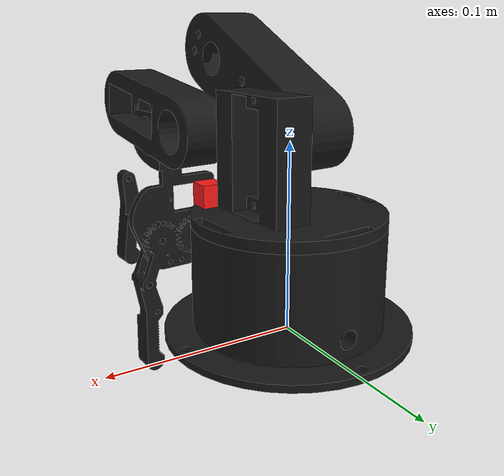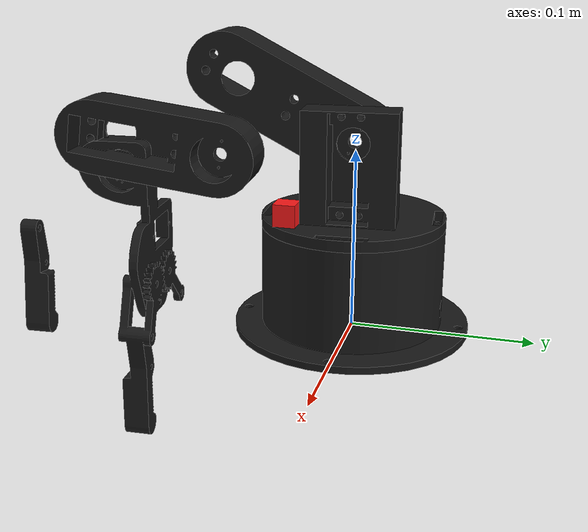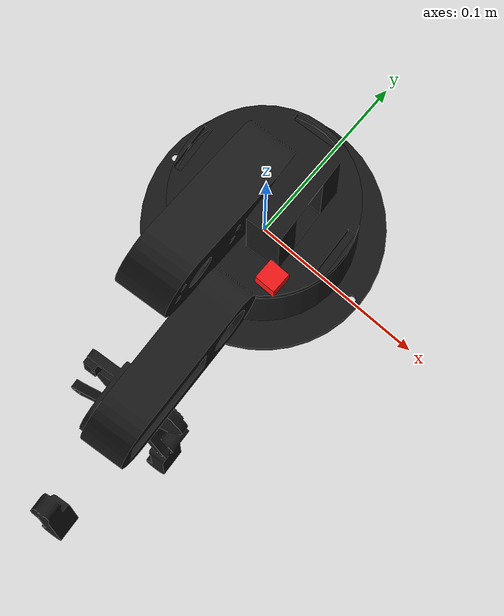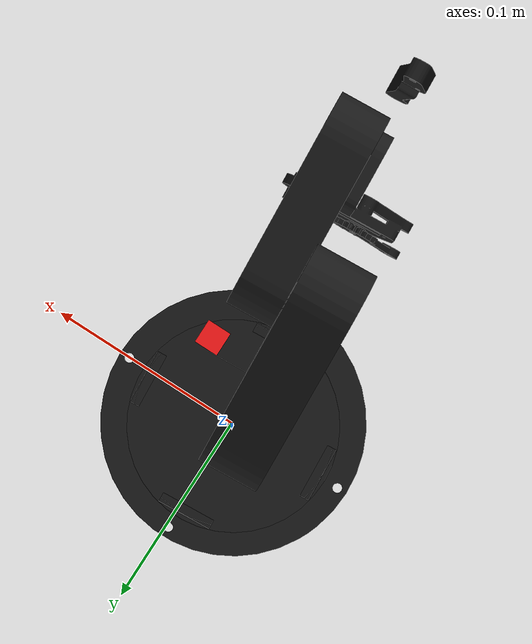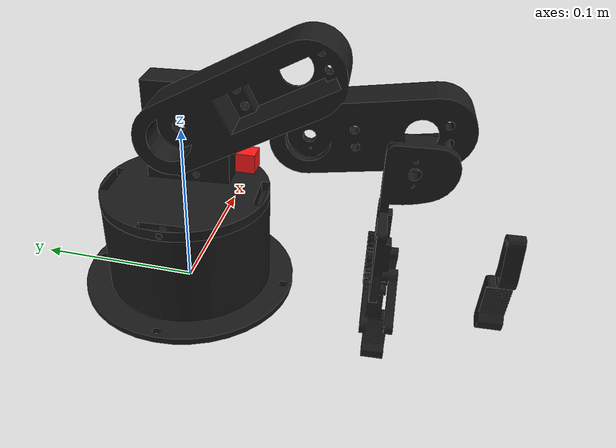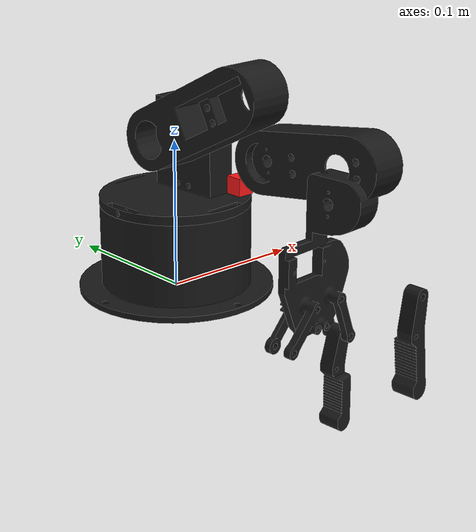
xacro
<?xml version="1.0" encoding="utf-8"?>
<robot
  name="urdf_remade">

 	<link name="world" />

  <joint name="fixed_base" type="fixed">
        <parent link="world" />
        <child link="base_link" />
    </joint>

  <link
    name="base_link">
    <inertial>
      <origin
        xyz="-0.00036123 -0.00042605 0.022628"
        rpy="0 0 0" />
      <mass
        value="0.18873" />
      <inertia
        ixx="0.00025902"
        ixy="0"
        ixz="0"
        iyy="0.00025783"
        iyz="0"
        izz="0.00039006" />
    </inertial>
    <visual>
      <origin
        xyz="0 0 0"
        rpy="0 0 0" />
      <geometry>
        <mesh
          filename="package://manipulator_description/meshes/base_link.STL" />
      </geometry>
      <material
        name="">
        <color
          rgba="0.098039 0.098039 0.098039 1"  />
      </material>
    </visual>
    <collision>
      <origin
        xyz="0 0 0"
        rpy="0 0 0" />
      <geometry>
        <mesh
          filename="package://manipulator_description/meshes/base_link.STL" />
      </geometry>
    </collision>
  </link>

  <link
    name="mancal_link">
    <inertial>
      <origin
        xyz="-0.010397 -0.00033628 0.012328"
        rpy="0 0 0" />
      <mass
        value="0.0822" />
      <inertia
        ixx="7.3019E-05"
        ixy="0"
        ixz="1.106E-05"
        iyy="6.8027E-05"
        iyz="0"
        izz="7.0545E-05" />
    </inertial>
    <visual>
      <origin
        xyz="0 0 0"
        rpy="0 0 0" />
      <geometry>
        <mesh
          filename="package://manipulator_description/meshes/mancal_link.STL" />
      </geometry>
      <material
        name="">
        <color
          rgba="0.098039 0.098039 0.098039 1"  />
      </material>
    </visual>
    <collision>
      <origin
        xyz="0 0 0"
        rpy="0 0 0" />
      <geometry>
        <mesh
          filename="package://manipulator_description/meshes/mancal_link.STL" />
      </geometry>
    </collision>
  </link>
  <joint
    name="joint_base_mancal"
    type="revolute">
    <origin
      xyz="-0.0030392 -0.00072042 0.065"
      rpy="0 0 -3.1273" />
    <parent
      link="base_link" />
    <child
      link="mancal_link" />
    <axis
      xyz="0 0 -1" />
    <limit
      lower="0"
      upper="3.14"
      effort="200"
      velocity="2" />
  </joint>

  <link
    name="camera">
    <visual>
      <geometry>
        <box size= "0.012 0.012 0.012" />
      </geometry>
      <material
        name="">
        <color
          rgba="1.0 0.098039 0.098039 1" />
      </material>
    </visual>
  </link>

  <joint name="fixed_camera" type="fixed">
      <origin
      xyz="0.03 -0.03 0.071"
      rpy="-1.57 0 0" />
      <parent link="base_link" />
      <child link="camera" />
    </joint>

  <link
    name="link_1">
    <inertial>
      <origin
        xyz="-0.007213 -0.0035323 0.035814"
        rpy="0 0 0" />
      <mass
        value="0.088001" />
      <inertia
        ixx="0.00010734"
        ixy="0"
        ixz="0"
        iyy="9.8432E-05"
        iyz="0"
        izz="2.2487E-05" />
    </inertial>
    <visual>
      <origin
        xyz="0 0 0"
        rpy="0 0 0" />
      <geometry>
        <mesh
          filename="package://manipulator_description/meshes/link_1.STL" />
      </geometry>
      <material
        name="">
        <color
          rgba="0.098039 0.098039 0.098039 1"  />
      </material>
    </visual>
    <collision>
      <origin
        xyz="0 0 0"
        rpy="0 0 0" />
      <geometry>
        <mesh
          filename="package://manipulator_description/meshes/link_1.STL" />
      </geometry>
    </collision>
  </link>
  <joint
    name="joint_mancal_link1"
    type="revolute">
    <origin
      xyz="-0.0036813 -0.00011907 0.0398"
      rpy="1.5708 0 3.1416" />
    <parent
      link="mancal_link" />
    <child
      link="link_1" />
    <axis
      xyz="-0.99948 0 0.032327" />
    <limit
      lower="-0.08"
      upper="2.8"
      effort="200"
      velocity="2" />
  </joint>
  <link
    name="link_2">
    <inertial>
      <origin
        xyz="0.0018709 -0.0062333 0.030663"
        rpy="0 0 0" />
      <mass
        value="0.063942" />
      <inertia
        ixx="7.284E-05"
        ixy="0"
        ixz="0"
        iyy="6.3073E-05"
        iyz="0"
        izz="1.6517E-05" />
    </inertial>
    <visual>
      <origin
        xyz="0 0 0"
        rpy="0 0 0" />
      <geometry>
        <mesh
          filename="package://manipulator_description/meshes/link_2.STL" />
      </geometry>
      <material
        name="">
        <color
          rgba="0.098039 0.098039 0.098039 1"  />
      </material>
    </visual>
    <collision>
      <origin
        xyz="0 0 0"
        rpy="0 0 0" />
      <geometry>
        <mesh
          filename="package://manipulator_description/meshes/link_2.STL" />
      </geometry>
    </collision>
  </link>
  <joint
    name="joint_link1_link2"
    type="revolute">
    <origin
      xyz="0.019243 -0.006808 0.069082"
      rpy="0 0 0" />
    <parent
      link="link_1" />
    <child
      link="link_2" />
    <axis
      xyz="0.99948 0 -0.032327" />
    <limit
      lower="-1.39"
      upper="1.39"
      effort="200"
      velocity="2" />
  </joint>
  <link
    name="link_3">
    <inertial>
      <origin
        xyz="-0.0066835 -0.042699 0.044103"
        rpy="0 0 0" />
      <mass
        value="0.054134" />
      <inertia
        ixx="3.9068E-05"
        ixy="0"
        ixz="0"
        iyy="2.1688E-05"
        iyz="1.6276E-05"
        izz="2.6129E-05" />
    </inertial>
    <visual>
      <origin
        xyz="0 0 0"
        rpy="0 0 0" />
      <geometry>
        <mesh
          filename="package://manipulator_description/meshes/link_3.STL" />
      </geometry>
      <material
        name="">
        <color
          rgba="0.098039 0.098039 0.098039 1"  />
      </material>
    </visual>
    <collision>
      <origin
        xyz="0 0 0"
        rpy="0 0 0" />
      <geometry>
        <mesh
          filename="package://manipulator_description/meshes/link_3.STL" />
      </geometry>
    </collision>
  </link>
  <joint
    name="joint_link2_link3"
    type="revolute">
    <origin
      xyz="-0.013691 -0.011936 0.059274"
      rpy="0 0 0" />
    <parent
      link="link_2" />
    <child
      link="link_3" />
    <axis
      xyz="-0.99948 0 0.032327" />
    <limit
      lower="-1.57"
      upper="1.57"
      effort="200"
      velocity="2" />
  </joint>
  <link
    name="gripper">
    <inertial>
      <origin
        xyz="0.01442 -0.0023726 0.0063946"
        rpy="0 0 0" />
      <mass
        value="0.054134" />
      <inertia
        ixx="3.9068E-05"
        ixy="0"
        ixz="0"
        iyy="2.1688E-05"
        iyz="-1.6276E-05"
        izz="2.6129E-05" />
    </inertial>
    <visual>
      <origin
        xyz="0 0 0"
        rpy="0 0 0" />
      <geometry>
        <mesh
          filename="package://manipulator_description/meshes/gripper.STL" />
      </geometry>
      <material
        name="">
        <color
          rgba="0.098039 0.098039 0.098039 1"  />
      </material>
    </visual>
    <collision>
      <origin
        xyz="0 0 0"
        rpy="0 0 0" />
      <geometry>
        <mesh
          filename="package://manipulator_description/meshes/gripper.STL" />
      </geometry>
    </collision>
  </link>

   <joint
    name="joint_link3_gripper"
    type="fixed">
    <origin
      xyz="0.0077365 -0.040327 0.050497"
      rpy="3.1416 0 3.1416" />
    <parent
      link="link_3" />
    <child
      link="gripper" />
    <axis
      xyz="0.019686 -0.79321 0.60863" />
    <limit
      lower="-0.35"
      upper="0.35"
      effort="200"
      velocity="2" />
  </joint>

  <link name="ee_center" />

   <joint
    name="joint_gripper_ee_center"
    type="fixed">
    <origin xyz="-0.01 -0.09 0.095" rpy="0.74 0 0" />
    <parent link="link_3" />
    <child link="ee_center" />
  </joint>

</robot>
